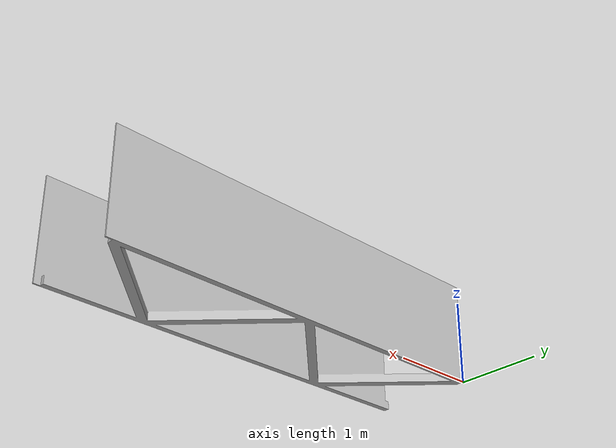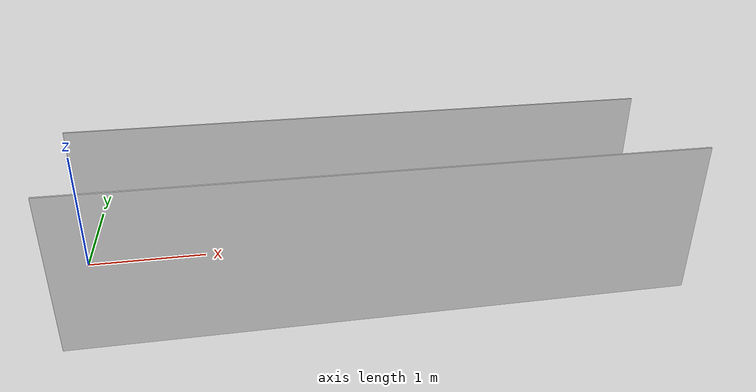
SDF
<?xml version='1.0'?>
<sdf version='1.6'>
  <model name='terrain-rails_k_flat'>
    <static>true</static>
    <link name='base_link'>
      <pose frame=''>0 0 0 0 -0 0</pose>
      <inertial>
        <pose frame=''>2.4308 -0.618 0.48158 0 -0 0</pose>
        <mass>278.1</mass>
        <inertia>
          <ixx>30.838</ixx>
          <ixy>-4.4409e-16</ixy>
          <ixz>1.0452e-14</ixz>
          <iyy>70.313</iyy>
          <iyz>-2.3567e-15</iyz>
          <izz>47.876</izz>
        </inertia>
      </inertial>
      <collision name='base_link_collision'>
        <pose frame=''>0 0 0 0 -0 0</pose>
        <geometry>
          <mesh>
            <scale>1 1 1</scale>
            <uri>model://terrain-rails_k_flat/meshes/base_link.STL</uri>
          </mesh>
        </geometry>
        <surface>
          <contact>
            <collide_bitmask>65535</collide_bitmask>
            <ode/>
          </contact>
          <friction>
            <ode>
              <mu>2</mu>
              <mu2>2</mu2>
            </ode>
            <torsional>
              <ode/>
            </torsional>
          </friction>
          <bounce/>
        </surface>
      </collision>
      <visual name='base_link_visual'>
        <pose frame=''>0 0 0 0 -0 0</pose>
        <geometry>
          <mesh>
            <scale>1 1 1</scale>
            <uri>model://terrain-rails_k_flat/meshes/base_link.STL</uri>
          </mesh>
        </geometry>
      </visual>
    </link>
  </model>
</sdf>
